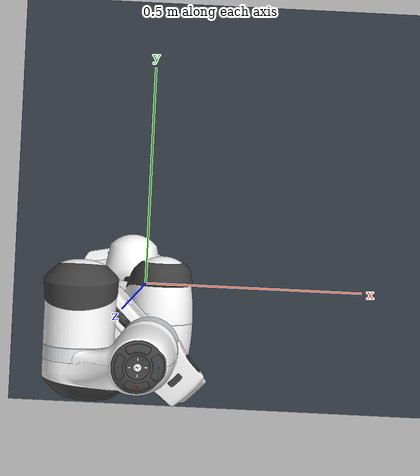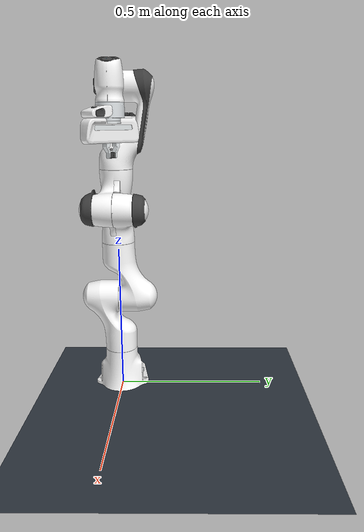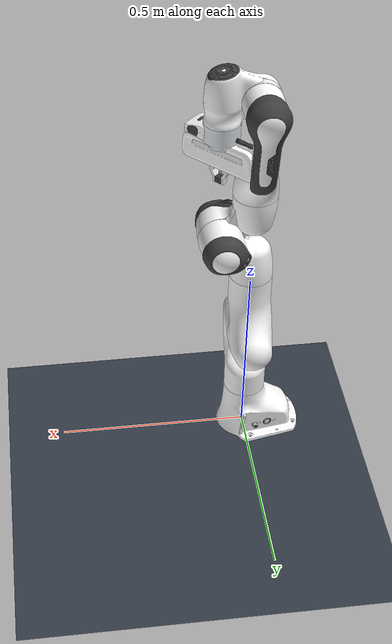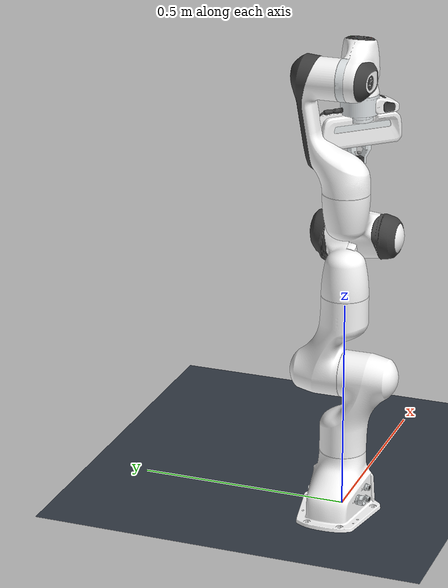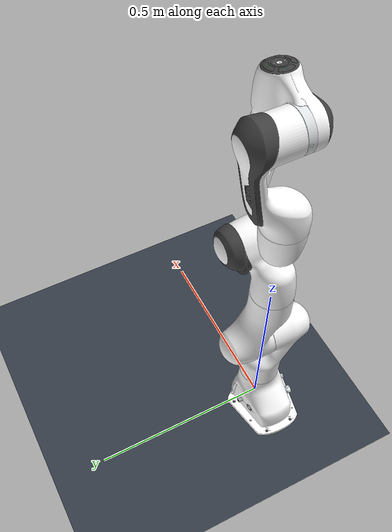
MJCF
<?xml version='1.0' encoding='utf-8'?>
<mujoco model="panda scene">
  <include file="robot.xml" />
  <statistic center="0.3 0 0.4" extent="1.0" />
  <worldbody>
    <light pos="1 -2 3" dir="-0.2 0.5 -1" diffuse="0.8 0.8 0.8" />
    <geom name="floor" type="plane" pos="0 0 -0.005" size="3 3 0.1" rgba="0.2 0.23 0.27 1" />
  </worldbody>
</mujoco>

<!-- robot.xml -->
<mujoco model="panda">
  <compiler angle="radian" />
  <asset>
    <mesh name="collision_hand" file="meshes/collision/collision_hand.stl" />
    <mesh name="visual_visual_hand_0" file="meshes/visual/visual_visual_hand_0.obj" inertia="shell" />
    <mesh name="visual_visual_hand_1" file="meshes/visual/visual_visual_hand_1.obj" inertia="shell" />
    <mesh name="visual_visual_hand_2" file="meshes/visual/visual_visual_hand_2.obj" inertia="shell" />
    <mesh name="visual_visual_hand_3" file="meshes/visual/visual_visual_hand_3.obj" inertia="shell" />
    <mesh name="visual_visual_hand_4" file="meshes/visual/visual_visual_hand_4.obj" inertia="shell" />
    <mesh name="collision_finger" file="meshes/collision/collision_finger.stl" />
    <mesh name="visual_visual_finger_0" file="meshes/visual/visual_visual_finger_0.obj" inertia="shell" />
    <mesh name="visual_visual_finger_1" file="meshes/visual/visual_visual_finger_1.obj" inertia="shell" />
    <mesh name="collision_link0" file="meshes/collision/collision_link0.stl" />
    <mesh name="visual_visual_link0_0" file="meshes/visual/visual_visual_link0_0.obj" inertia="shell" />
    <mesh name="visual_visual_link0_1" file="meshes/visual/visual_visual_link0_1.obj" inertia="shell" />
    <mesh name="visual_visual_link0_2" file="meshes/visual/visual_visual_link0_2.obj" inertia="shell" />
    <mesh name="visual_visual_link0_3" file="meshes/visual/visual_visual_link0_3.obj" inertia="shell" />
    <mesh name="visual_visual_link0_4" file="meshes/visual/visual_visual_link0_4.obj" inertia="shell" />
    <mesh name="visual_visual_link0_5" file="meshes/visual/visual_visual_link0_5.obj" inertia="shell" />
    <mesh name="visual_visual_link0_6" file="meshes/visual/visual_visual_link0_6.obj" inertia="shell" />
    <mesh name="visual_visual_link0_7" file="meshes/visual/visual_visual_link0_7.obj" inertia="shell" />
    <mesh name="visual_visual_link0_8" file="meshes/visual/visual_visual_link0_8.obj" inertia="shell" />
    <mesh name="visual_visual_link0_9" file="meshes/visual/visual_visual_link0_9.obj" inertia="shell" />
    <mesh name="visual_visual_link0_10" file="meshes/visual/visual_visual_link0_10.obj" inertia="shell" />
    <mesh name="visual_visual_link0_11" file="meshes/visual/visual_visual_link0_11.obj" inertia="shell" />
    <mesh name="visual_visual_link0_12" file="meshes/visual/visual_visual_link0_12.obj" inertia="shell" />
    <mesh name="visual_visual_link0_13" file="meshes/visual/visual_visual_link0_13.obj" inertia="shell" />
    <mesh name="visual_visual_link0_14" file="meshes/visual/visual_visual_link0_14.obj" inertia="shell" />
    <mesh name="visual_visual_link0_15" file="meshes/visual/visual_visual_link0_15.obj" inertia="shell" />
    <mesh name="visual_visual_link0_16" file="meshes/visual/visual_visual_link0_16.obj" inertia="shell" />
    <mesh name="visual_visual_link0_17" file="meshes/visual/visual_visual_link0_17.obj" inertia="shell" />
    <mesh name="visual_visual_link0_18" file="meshes/visual/visual_visual_link0_18.obj" inertia="shell" />
    <mesh name="visual_visual_link0_19" file="meshes/visual/visual_visual_link0_19.obj" inertia="shell" />
    <mesh name="visual_visual_link0_20" file="meshes/visual/visual_visual_link0_20.obj" inertia="shell" />
    <mesh name="visual_visual_link0_21" file="meshes/visual/visual_visual_link0_21.obj" inertia="shell" />
    <mesh name="visual_visual_link0_22" file="meshes/visual/visual_visual_link0_22.obj" inertia="shell" />
    <mesh name="collision_link1" file="meshes/collision/collision_link1.stl" />
    <mesh name="visual_visual_link1_0" file="meshes/visual/visual_visual_link1_0.obj" inertia="shell" />
    <mesh name="collision_link2" file="meshes/collision/collision_link2.stl" />
    <mesh name="visual_visual_link2_0" file="meshes/visual/visual_visual_link2_0.obj" inertia="shell" />
    <mesh name="collision_link3" file="meshes/collision/collision_link3.stl" />
    <mesh name="visual_visual_link3_0" file="meshes/visual/visual_visual_link3_0.obj" inertia="shell" />
    <mesh name="visual_visual_link3_1" file="meshes/visual/visual_visual_link3_1.obj" inertia="shell" />
    <mesh name="visual_visual_link3_2" file="meshes/visual/visual_visual_link3_2.obj" inertia="shell" />
    <mesh name="visual_visual_link3_3" file="meshes/visual/visual_visual_link3_3.obj" inertia="shell" />
    <mesh name="collision_link4" file="meshes/collision/collision_link4.stl" />
    <mesh name="visual_visual_link4_0" file="meshes/visual/visual_visual_link4_0.obj" inertia="shell" />
    <mesh name="visual_visual_link4_1" file="meshes/visual/visual_visual_link4_1.obj" inertia="shell" />
    <mesh name="visual_visual_link4_2" file="meshes/visual/visual_visual_link4_2.obj" inertia="shell" />
    <mesh name="visual_visual_link4_3" file="meshes/visual/visual_visual_link4_3.obj" inertia="shell" />
    <mesh name="collision_link5" file="meshes/collision/collision_link5.stl" />
    <mesh name="visual_visual_link5_0" file="meshes/visual/visual_visual_link5_0.obj" inertia="shell" />
    <mesh name="visual_visual_link5_1" file="meshes/visual/visual_visual_link5_1.obj" inertia="shell" />
    <mesh name="visual_visual_link5_2" file="meshes/visual/visual_visual_link5_2.obj" inertia="shell" />
    <mesh name="collision_link6" file="meshes/collision/collision_link6.stl" />
    <mesh name="visual_visual_link6_0" file="meshes/visual/visual_visual_link6_0.obj" inertia="shell" />
    <mesh name="visual_visual_link6_1" file="meshes/visual/visual_visual_link6_1.obj" inertia="shell" />
    <mesh name="visual_visual_link6_2" file="meshes/visual/visual_visual_link6_2.obj" inertia="shell" />
    <mesh name="visual_visual_link6_3" file="meshes/visual/visual_visual_link6_3.obj" inertia="shell" />
    <mesh name="visual_visual_link6_4" file="meshes/visual/visual_visual_link6_4.obj" inertia="shell" />
    <mesh name="visual_visual_link6_5" file="meshes/visual/visual_visual_link6_5.obj" inertia="shell" />
    <mesh name="visual_visual_link6_6" file="meshes/visual/visual_visual_link6_6.obj" inertia="shell" />
    <mesh name="visual_visual_link6_7" file="meshes/visual/visual_visual_link6_7.obj" inertia="shell" />
    <mesh name="visual_visual_link6_8" file="meshes/visual/visual_visual_link6_8.obj" inertia="shell" />
    <mesh name="visual_visual_link6_9" file="meshes/visual/visual_visual_link6_9.obj" inertia="shell" />
    <mesh name="visual_visual_link6_10" file="meshes/visual/visual_visual_link6_10.obj" inertia="shell" />
    <mesh name="visual_visual_link6_11" file="meshes/visual/visual_visual_link6_11.obj" inertia="shell" />
    <mesh name="visual_visual_link6_12" file="meshes/visual/visual_visual_link6_12.obj" inertia="shell" />
    <mesh name="visual_visual_link6_13" file="meshes/visual/visual_visual_link6_13.obj" inertia="shell" />
    <mesh name="visual_visual_link6_14" file="meshes/visual/visual_visual_link6_14.obj" inertia="shell" />
    <mesh name="visual_visual_link6_15" file="meshes/visual/visual_visual_link6_15.obj" inertia="shell" />
    <mesh name="visual_visual_link6_16" file="meshes/visual/visual_visual_link6_16.obj" inertia="shell" />
    <mesh name="collision_link7" file="meshes/collision/collision_link7.stl" />
    <mesh name="visual_visual_link7_0" file="meshes/visual/visual_visual_link7_0.obj" inertia="shell" />
    <mesh name="visual_visual_link7_1" file="meshes/visual/visual_visual_link7_1.obj" inertia="shell" />
    <mesh name="visual_visual_link7_2" file="meshes/visual/visual_visual_link7_2.obj" inertia="shell" />
    <mesh name="visual_visual_link7_3" file="meshes/visual/visual_visual_link7_3.obj" inertia="shell" />
    <mesh name="visual_visual_link7_4" file="meshes/visual/visual_visual_link7_4.obj" inertia="shell" />
    <mesh name="visual_visual_link7_5" file="meshes/visual/visual_visual_link7_5.obj" inertia="shell" />
    <mesh name="visual_visual_link7_6" file="meshes/visual/visual_visual_link7_6.obj" inertia="shell" />
    <mesh name="visual_visual_link7_7" file="meshes/visual/visual_visual_link7_7.obj" inertia="shell" />
    <material name="visual_visual_hand_0_material" rgba="0.2509803922 0.2509803922 0.2509803922 1" />
    <material name="visual_visual_hand_1_material" rgba="0.9019607843 0.9215686275 0.9294117647 1" />
    <material name="visual_visual_hand_2_material" rgba="0.9019607843 0.9215686275 0.9294117647 1" />
    <material name="visual_visual_hand_3_material" rgba="1 1 1 1" />
    <material name="visual_visual_hand_4_material" rgba="0.2509803922 0.2509803922 0.2509803922 1" />
    <material name="visual_visual_finger_0_material" rgba="0.9019607843 0.9215686275 0.9294117647 1" />
    <material name="visual_visual_finger_1_material" rgba="0.2509803922 0.2509803922 0.2509803922 1" />
    <material name="visual_visual_link0_0_material" rgba="0.9019607843 0.9215686275 0.9294117647 1" />
    <material name="visual_visual_link0_1_material" rgba="0.9019607843 0.9215686275 0.9294117647 1" />
    <material name="visual_visual_link0_2_material" rgba="1 1 1 1" />
    <material name="visual_visual_link0_3_material" rgba="1 1 1 1" />
    <material name="visual_visual_link0_4_material" rgba="1 1 1 1" />
    <material name="visual_visual_link0_5_material" rgba="1 1 1 1" />
    <material name="visual_visual_link0_6_material" rgba="1 1 1 1" />
    <material name="visual_visual_link0_7_material" rgba="0.9019607843 0.9215686275 0.9294117647 1" />
    <material name="visual_visual_link0_8_material" rgba="0.9019607843 0.9215686275 0.9294117647 1" />
    <material name="visual_visual_link0_9_material" rgba="0.2509803922 0.2509803922 0.2509803922 1" />
    <material name="visual_visual_link0_10_material" rgba="0.2509803922 0.2509803922 0.2509803922 1" />
    <material name="visual_visual_link0_11_material" rgba="0.2509803922 0.2509803922 0.2509803922 1" />
    <material name="visual_visual_link0_12_material" rgba="0.2509803922 0.2509803922 0.2509803922 1" />
    <material name="visual_visual_link0_13_material" rgba="0.9019607843 0.9215686275 0.9294117647 1" />
    <material name="visual_visual_link0_14_material" rgba="0.9019607843 0.9215686275 0.9294117647 1" />
    <material name="visual_visual_link0_15_material" rgba="0.9019607843 0.9215686275 0.9294117647 1" />
    <material name="visual_visual_link0_16_material" rgba="0.9019607843 0.9215686275 0.9294117647 1" />
    <material name="visual_visual_link0_17_material" rgba="0.2509803922 0.2509803922 0.2509803922 1" />
    <material name="visual_visual_link0_18_material" rgba="0.2509803922 0.2509803922 0.2509803922 1" />
    <material name="visual_visual_link0_19_material" rgba="0.9019607843 0.9215686275 0.9294117647 1" />
    <material name="visual_visual_link0_20_material" rgba="0.9019607843 0.9215686275 0.9294117647 1" />
    <material name="visual_visual_link0_21_material" rgba="0.2509803922 0.2509803922 0.2509803922 1" />
    <material name="visual_visual_link0_22_material" rgba="0.2509803922 0.2509803922 0.2509803922 1" />
    <material name="visual_visual_link1_0_material" rgba="1 1 1 1" />
    <material name="visual_visual_link2_0_material" rgba="1 1 1 1" />
    <material name="visual_visual_link3_0_material" rgba="1 1 1 1" />
    <material name="visual_visual_link3_1_material" rgba="1 1 1 1" />
    <material name="visual_visual_link3_2_material" rgba="1 1 1 1" />
    <material name="visual_visual_link3_3_material" rgba="0.2509803922 0.2509803922 0.2509803922 1" />
    <material name="visual_visual_link4_0_material" rgba="1 1 1 1" />
    <material name="visual_visual_link4_1_material" rgba="0.2509803922 0.2509803922 0.2509803922 1" />
    <material name="visual_visual_link4_2_material" rgba="1 1 1 1" />
    <material name="visual_visual_link4_3_material" rgba="1 1 1 1" />
    <material name="visual_visual_link5_0_material" rgba="1 1 1 1" />
    <material name="visual_visual_link5_1_material" rgba="0.2509803922 0.2509803922 0.2509803922 1" />
    <material name="visual_visual_link5_2_material" rgba="1 1 1 1" />
    <material name="visual_visual_link6_0_material" rgba="1 0 0 1" />
    <material name="visual_visual_link6_1_material" rgba="0 1 0 1" />
    <material name="visual_visual_link6_2_material" rgba="1 1 1 1" />
    <material name="visual_visual_link6_3_material" rgba="0.2509803922 0.2509803922 0.2509803922 1" />
    <material name="visual_visual_link6_4_material" rgba="0.2509803922 0.2509803922 0.2509803922 1" />
    <material name="visual_visual_link6_5_material" rgba="0.2509803922 0.2509803922 0.2509803922 1" />
    <material name="visual_visual_link6_6_material" rgba="1 1 1 1" />
    <material name="visual_visual_link6_7_material" rgba="1 1 1 1" />
    <material name="visual_visual_link6_8_material" rgba="1 1 1 1" />
    <material name="visual_visual_link6_9_material" rgba="1 1 1 1" />
    <material name="visual_visual_link6_10_material" rgba="0.9019607843 0.9215686275 0.9294117647 1" />
    <material name="visual_visual_link6_11_material" rgba="0.2509803922 0.2509803922 0.2509803922 1" />
    <material name="visual_visual_link6_12_material" rgba="1 1 1 1" />
    <material name="visual_visual_link6_13_material" rgba="1 1 1 1" />
    <material name="visual_visual_link6_14_material" rgba="0.2509803922 0.2509803922 0.2509803922 1" />
    <material name="visual_visual_link6_15_material" rgba="0.03921568627 0.5411764706 0.7803921569 1" />
    <material name="visual_visual_link6_16_material" rgba="0.03921568627 0.5411764706 0.7803921569 1" />
    <material name="visual_visual_link7_0_material" rgba="0.2509803922 0.2509803922 0.2509803922 1" />
    <material name="visual_visual_link7_1_material" rgba="0.2509803922 0.2509803922 0.2509803922 1" />
    <material name="visual_visual_link7_2_material" rgba="0.2509803922 0.2509803922 0.2509803922 1" />
    <material name="visual_visual_link7_3_material" rgba="1 1 1 1" />
    <material name="visual_visual_link7_4_material" rgba="0.2509803922 0.2509803922 0.2509803922 1" />
    <material name="visual_visual_link7_5_material" rgba="0.2509803922 0.2509803922 0.2509803922 1" />
    <material name="visual_visual_link7_6_material" rgba="0.2509803922 0.2509803922 0.2509803922 1" />
    <material name="visual_visual_link7_7_material" rgba="0.8980392157 0.9176470588 0.9294117647 1" />
  </asset>
  <worldbody>
    <body name="panda_link0">
      <geom type="mesh" mesh="collision_link0" group="3" />
      <geom name="panda_link0_visual_visual_link0_0" type="mesh" contype="0" conaffinity="0" group="1" density="0" mesh="visual_visual_link0_0" material="visual_visual_link0_0_material" />
      <geom name="panda_link0_visual_visual_link0_1" type="mesh" contype="0" conaffinity="0" group="1" density="0" mesh="visual_visual_link0_1" material="visual_visual_link0_1_material" />
      <geom name="panda_link0_visual_visual_link0_2" type="mesh" contype="0" conaffinity="0" group="1" density="0" mesh="visual_visual_link0_2" material="visual_visual_link0_2_material" />
      <geom name="panda_link0_visual_visual_link0_3" type="mesh" contype="0" conaffinity="0" group="1" density="0" mesh="visual_visual_link0_3" material="visual_visual_link0_3_material" />
      <geom name="panda_link0_visual_visual_link0_4" type="mesh" contype="0" conaffinity="0" group="1" density="0" mesh="visual_visual_link0_4" material="visual_visual_link0_4_material" />
      <geom name="panda_link0_visual_visual_link0_5" type="mesh" contype="0" conaffinity="0" group="1" density="0" mesh="visual_visual_link0_5" material="visual_visual_link0_5_material" />
      <geom name="panda_link0_visual_visual_link0_6" type="mesh" contype="0" conaffinity="0" group="1" density="0" mesh="visual_visual_link0_6" material="visual_visual_link0_6_material" />
      <geom name="panda_link0_visual_visual_link0_7" type="mesh" contype="0" conaffinity="0" group="1" density="0" mesh="visual_visual_link0_7" material="visual_visual_link0_7_material" />
      <geom name="panda_link0_visual_visual_link0_8" type="mesh" contype="0" conaffinity="0" group="1" density="0" mesh="visual_visual_link0_8" material="visual_visual_link0_8_material" />
      <geom name="panda_link0_visual_visual_link0_9" type="mesh" contype="0" conaffinity="0" group="1" density="0" mesh="visual_visual_link0_9" material="visual_visual_link0_9_material" />
      <geom name="panda_link0_visual_visual_link0_10" type="mesh" contype="0" conaffinity="0" group="1" density="0" mesh="visual_visual_link0_10" material="visual_visual_link0_10_material" />
      <geom name="panda_link0_visual_visual_link0_11" type="mesh" contype="0" conaffinity="0" group="1" density="0" mesh="visual_visual_link0_11" material="visual_visual_link0_11_material" />
      <geom name="panda_link0_visual_visual_link0_12" type="mesh" contype="0" conaffinity="0" group="1" density="0" mesh="visual_visual_link0_12" material="visual_visual_link0_12_material" />
      <geom name="panda_link0_visual_visual_link0_13" type="mesh" contype="0" conaffinity="0" group="1" density="0" mesh="visual_visual_link0_13" material="visual_visual_link0_13_material" />
      <geom name="panda_link0_visual_visual_link0_14" type="mesh" contype="0" conaffinity="0" group="1" density="0" mesh="visual_visual_link0_14" material="visual_visual_link0_14_material" />
      <geom name="panda_link0_visual_visual_link0_15" type="mesh" contype="0" conaffinity="0" group="1" density="0" mesh="visual_visual_link0_15" material="visual_visual_link0_15_material" />
      <geom name="panda_link0_visual_visual_link0_16" type="mesh" contype="0" conaffinity="0" group="1" density="0" mesh="visual_visual_link0_16" material="visual_visual_link0_16_material" />
      <geom name="panda_link0_visual_visual_link0_17" type="mesh" contype="0" conaffinity="0" group="1" density="0" mesh="visual_visual_link0_17" material="visual_visual_link0_17_material" />
      <geom name="panda_link0_visual_visual_link0_18" type="mesh" contype="0" conaffinity="0" group="1" density="0" mesh="visual_visual_link0_18" material="visual_visual_link0_18_material" />
      <geom name="panda_link0_visual_visual_link0_19" type="mesh" contype="0" conaffinity="0" group="1" density="0" mesh="visual_visual_link0_19" material="visual_visual_link0_19_material" />
      <geom name="panda_link0_visual_visual_link0_20" type="mesh" contype="0" conaffinity="0" group="1" density="0" mesh="visual_visual_link0_20" material="visual_visual_link0_20_material" />
      <geom name="panda_link0_visual_visual_link0_21" type="mesh" contype="0" conaffinity="0" group="1" density="0" mesh="visual_visual_link0_21" material="visual_visual_link0_21_material" />
      <geom name="panda_link0_visual_visual_link0_22" type="mesh" contype="0" conaffinity="0" group="1" density="0" mesh="visual_visual_link0_22" material="visual_visual_link0_22_material" />
      <body name="panda_link1" pos="0 0 0.333">
        <inertial pos="0.003875 0.002081 -0.175" quat="0.711549 0.00634377 -0.0131124 0.702485" mass="4.97068" diaginertia="0.707137 0.703435 0.00852456" />
        <joint name="panda_joint1" range="-2.8973 2.8973" actuatorfrcrange="-87 87" damping="10" frictionloss="5" />
        <geom type="mesh" mesh="collision_link1" group="3" />
        <geom name="panda_link1_visual_visual_link1_0" type="mesh" contype="0" conaffinity="0" group="1" density="0" mesh="visual_visual_link1_0" material="visual_visual_link1_0_material" />
        <body name="panda_link2" quat="0.707107 -0.707107 0 0">
          <inertial pos="-0.003141 -0.02872 0.003495" quat="-0.168175 0.828366 -0.122878 0.520027" mass="0.646926" diaginertia="0.0310326 0.0283001 0.00273425" />
          <joint name="panda_joint2" range="-1.7628 1.7628" actuatorfrcrange="-87 87" damping="5" frictionloss="2" />
          <geom type="mesh" mesh="collision_link2" group="3" />
          <geom name="panda_link2_visual_visual_link2_0" type="mesh" contype="0" conaffinity="0" group="1" density="0" mesh="visual_visual_link2_0" material="visual_visual_link2_0_material" />
          <body name="panda_link3" pos="0 -0.316 0" quat="0.707107 0.707107 0 0">
            <inertial pos="0.027518 0.039252 -0.066502" quat="0.662769 -0.00678331 0.252053 0.705096" mass="3.2286" diaginertia="0.0415014 0.0414793 0.00124635" />
            <joint name="panda_joint3" range="-2.8973 2.8973" actuatorfrcrange="-87 87" damping="5" frictionloss="2" />
            <geom type="mesh" mesh="collision_link3" group="3" />
            <geom name="panda_link3_visual_visual_link3_0" type="mesh" contype="0" conaffinity="0" group="1" density="0" mesh="visual_visual_link3_0" material="visual_visual_link3_0_material" />
            <geom name="panda_link3_visual_visual_link3_1" type="mesh" contype="0" conaffinity="0" group="1" density="0" mesh="visual_visual_link3_1" material="visual_visual_link3_1_material" />
            <geom name="panda_link3_visual_visual_link3_2" type="mesh" contype="0" conaffinity="0" group="1" density="0" mesh="visual_visual_link3_2" material="visual_visual_link3_2_material" />
            <geom name="panda_link3_visual_visual_link3_3" type="mesh" contype="0" conaffinity="0" group="1" density="0" mesh="visual_visual_link3_3" material="visual_visual_link3_3_material" />
            <body name="panda_link4" pos="0.0825 0 0" quat="0.707107 0.707107 0 0">
              <inertial pos="-0.05317 0.104419 0.027454" quat="0.65058 0.529822 -0.0962034 0.535518" mass="3.5879" diaginertia="0.0349596 0.0281483 0.0106201" />
              <joint name="panda_joint4" range="-3.0718 -0.0698" actuatorfrcrange="-87 87" damping="1" frictionloss="0.5" />
              <geom type="mesh" mesh="collision_link4" group="3" />
              <geom name="panda_link4_visual_visual_link4_0" type="mesh" contype="0" conaffinity="0" group="1" density="0" mesh="visual_visual_link4_0" material="visual_visual_link4_0_material" />
              <geom name="panda_link4_visual_visual_link4_1" type="mesh" contype="0" conaffinity="0" group="1" density="0" mesh="visual_visual_link4_1" material="visual_visual_link4_1_material" />
              <geom name="panda_link4_visual_visual_link4_2" type="mesh" contype="0" conaffinity="0" group="1" density="0" mesh="visual_visual_link4_2" material="visual_visual_link4_2_material" />
              <geom name="panda_link4_visual_visual_link4_3" type="mesh" contype="0" conaffinity="0" group="1" density="0" mesh="visual_visual_link4_3" material="visual_visual_link4_3_material" />
              <body name="panda_link5" pos="-0.0825 0.384 0" quat="0.707107 -0.707107 0 0">
                <inertial pos="-0.011953 0.041065 -0.038437" quat="0.987313 -0.0121954 0.0719187 -0.141037" mass="1.22595" diaginertia="0.0367625 0.0288531 0.00803437" />
                <joint name="panda_joint5" range="-2.8973 2.8973" actuatorfrcrange="-12 12" damping="2" frictionloss="1" />
                <geom type="mesh" mesh="collision_link5" group="3" />
                <geom name="panda_link5_visual_visual_link5_0" type="mesh" contype="0" conaffinity="0" group="1" density="0" mesh="visual_visual_link5_0" material="visual_visual_link5_0_material" />
                <geom name="panda_link5_visual_visual_link5_1" type="mesh" contype="0" conaffinity="0" group="1" density="0" mesh="visual_visual_link5_1" material="visual_visual_link5_1_material" />
                <geom name="panda_link5_visual_visual_link5_2" type="mesh" contype="0" conaffinity="0" group="1" density="0" mesh="visual_visual_link5_2" material="visual_visual_link5_2_material" />
                <body name="panda_link6" quat="0.707107 0.707107 0 0">
                  <inertial pos="0.060149 -0.014117 -0.010517" quat="0.101075 0.59332 0.0287227 0.798079" mass="1.66656" diaginertia="0.00584276 0.00431037 0.00159787" />
                  <joint name="panda_joint6" range="-0.0175 3.7525" actuatorfrcrange="-12 12" damping="1" frictionloss="0.5" />
                  <geom type="mesh" mesh="collision_link6" group="3" />
                  <geom name="panda_link6_visual_visual_link6_0" type="mesh" contype="0" conaffinity="0" group="1" density="0" mesh="visual_visual_link6_0" material="visual_visual_link6_0_material" />
                  <geom name="panda_link6_visual_visual_link6_1" type="mesh" contype="0" conaffinity="0" group="1" density="0" mesh="visual_visual_link6_1" material="visual_visual_link6_1_material" />
                  <geom name="panda_link6_visual_visual_link6_2" type="mesh" contype="0" conaffinity="0" group="1" density="0" mesh="visual_visual_link6_2" material="visual_visual_link6_2_material" />
                  <geom name="panda_link6_visual_visual_link6_3" type="mesh" contype="0" conaffinity="0" group="1" density="0" mesh="visual_visual_link6_3" material="visual_visual_link6_3_material" />
                  <geom name="panda_link6_visual_visual_link6_4" type="mesh" contype="0" conaffinity="0" group="1" density="0" mesh="visual_visual_link6_4" material="visual_visual_link6_4_material" />
                  <geom name="panda_link6_visual_visual_link6_5" type="mesh" contype="0" conaffinity="0" group="1" density="0" mesh="visual_visual_link6_5" material="visual_visual_link6_5_material" />
                  <geom name="panda_link6_visual_visual_link6_6" type="mesh" contype="0" conaffinity="0" group="1" density="0" mesh="visual_visual_link6_6" material="visual_visual_link6_6_material" />
                  <geom name="panda_link6_visual_visual_link6_7" type="mesh" contype="0" conaffinity="0" group="1" density="0" mesh="visual_visual_link6_7" material="visual_visual_link6_7_material" />
                  <geom name="panda_link6_visual_visual_link6_8" type="mesh" contype="0" conaffinity="0" group="1" density="0" mesh="visual_visual_link6_8" material="visual_visual_link6_8_material" />
                  <geom name="panda_link6_visual_visual_link6_9" type="mesh" contype="0" conaffinity="0" group="1" density="0" mesh="visual_visual_link6_9" material="visual_visual_link6_9_material" />
                  <geom name="panda_link6_visual_visual_link6_10" type="mesh" contype="0" conaffinity="0" group="1" density="0" mesh="visual_visual_link6_10" material="visual_visual_link6_10_material" />
                  <geom name="panda_link6_visual_visual_link6_11" type="mesh" contype="0" conaffinity="0" group="1" density="0" mesh="visual_visual_link6_11" material="visual_visual_link6_11_material" />
                  <geom name="panda_link6_visual_visual_link6_12" type="mesh" contype="0" conaffinity="0" group="1" density="0" mesh="visual_visual_link6_12" material="visual_visual_link6_12_material" />
                  <geom name="panda_link6_visual_visual_link6_13" type="mesh" contype="0" conaffinity="0" group="1" density="0" mesh="visual_visual_link6_13" material="visual_visual_link6_13_material" />
                  <geom name="panda_link6_visual_visual_link6_14" type="mesh" contype="0" conaffinity="0" group="1" density="0" mesh="visual_visual_link6_14" material="visual_visual_link6_14_material" />
                  <geom name="panda_link6_visual_visual_link6_15" type="mesh" contype="0" conaffinity="0" group="1" density="0" mesh="visual_visual_link6_15" material="visual_visual_link6_15_material" />
                  <geom name="panda_link6_visual_visual_link6_16" type="mesh" contype="0" conaffinity="0" group="1" density="0" mesh="visual_visual_link6_16" material="visual_visual_link6_16_material" />
                  <body name="panda_link7" pos="0.088 0 0" quat="0.707107 0.707107 0 0">
                    <inertial pos="0.010517 -0.004252 0.061597" quat="0.992939 -0.0762041 0.0733595 -0.0537067" mass="0.735522" diaginertia="0.0127345 0.0101055 0.00451803" />
                    <joint name="panda_joint7" range="-2.8973 2.8973" actuatorfrcrange="-12 12" damping="1" frictionloss="0.5" />
                    <geom type="mesh" mesh="collision_link7" group="3" />
                    <geom name="panda_link7_visual_visual_link7_0" type="mesh" contype="0" conaffinity="0" group="1" density="0" mesh="visual_visual_link7_0" material="visual_visual_link7_0_material" />
                    <geom name="panda_link7_visual_visual_link7_1" type="mesh" contype="0" conaffinity="0" group="1" density="0" mesh="visual_visual_link7_1" material="visual_visual_link7_1_material" />
                    <geom name="panda_link7_visual_visual_link7_2" type="mesh" contype="0" conaffinity="0" group="1" density="0" mesh="visual_visual_link7_2" material="visual_visual_link7_2_material" />
                    <geom name="panda_link7_visual_visual_link7_3" type="mesh" contype="0" conaffinity="0" group="1" density="0" mesh="visual_visual_link7_3" material="visual_visual_link7_3_material" />
                    <geom name="panda_link7_visual_visual_link7_4" type="mesh" contype="0" conaffinity="0" group="1" density="0" mesh="visual_visual_link7_4" material="visual_visual_link7_4_material" />
                    <geom name="panda_link7_visual_visual_link7_5" type="mesh" contype="0" conaffinity="0" group="1" density="0" mesh="visual_visual_link7_5" material="visual_visual_link7_5_material" />
                    <geom name="panda_link7_visual_visual_link7_6" type="mesh" contype="0" conaffinity="0" group="1" density="0" mesh="visual_visual_link7_6" material="visual_visual_link7_6_material" />
                    <geom name="panda_link7_visual_visual_link7_7" type="mesh" contype="0" conaffinity="0" group="1" density="0" mesh="visual_visual_link7_7" material="visual_visual_link7_7_material" />
                    <body name="panda_link8" pos="0 0 0.107">
                      <inertial pos="0 0 0" mass="0" diaginertia="0.001 0.001 0.001" />
                      <body name="panda_hand" quat="0.92388 0 0 -0.382683">
                        <inertial pos="0 0.0015244 0.0275912" quat="0.707107 0.707107 0 0" mass="0.73" diaginertia="0.0027856 0.00256378 0.000400033" />
                        <site name="grasp" pos="0 0 0.085" size="0.004"/>
                        <geom type="mesh" mesh="collision_hand" group="3" />
                        <geom name="panda_hand_visual_visual_hand_0" type="mesh" contype="0" conaffinity="0" group="1" density="0" mesh="visual_visual_hand_0" material="visual_visual_hand_0_material" />
                        <geom name="panda_hand_visual_visual_hand_1" type="mesh" contype="0" conaffinity="0" group="1" density="0" mesh="visual_visual_hand_1" material="visual_visual_hand_1_material" />
                        <geom name="panda_hand_visual_visual_hand_2" type="mesh" contype="0" conaffinity="0" group="1" density="0" mesh="visual_visual_hand_2" material="visual_visual_hand_2_material" />
                        <geom name="panda_hand_visual_visual_hand_3" type="mesh" contype="0" conaffinity="0" group="1" density="0" mesh="visual_visual_hand_3" material="visual_visual_hand_3_material" />
                        <geom name="panda_hand_visual_visual_hand_4" type="mesh" contype="0" conaffinity="0" group="1" density="0" mesh="visual_visual_hand_4" material="visual_visual_hand_4_material" />
                        <body name="panda_leftfinger" pos="0 0 0.0584">
                          <inertial pos="0 0.0145644 0.0227941" mass="0.1" diaginertia="3.01221e-05 2.95874e-05 6.95125e-06" />
                          <joint name="panda_finger_joint1" type="slide" range="0 0.04" actuatorfrcrange="-20 20" damping="500" axis="0 1 0" />
                          <geom type="mesh" mesh="collision_finger" group="3" />
                          <geom name="panda_leftfinger_visual_visual_finger_0" type="mesh" contype="0" conaffinity="0" group="1" density="0" mesh="visual_visual_finger_0" material="visual_visual_finger_0_material" />
                          <geom name="panda_leftfinger_visual_visual_finger_1" type="mesh" contype="0" conaffinity="0" group="1" density="0" mesh="visual_visual_finger_1" material="visual_visual_finger_1_material" />
                        </body>
                        <body name="panda_rightfinger" pos="0 0 0.0584">
                          <inertial pos="0 -0.0145644 0.0227941" mass="0.1" diaginertia="3.01221e-05 2.95874e-05 6.95125e-06" />
                          <joint name="panda_finger_joint2" type="slide" range="0 0.04" actuatorfrcrange="-20 20" damping="500" axis="0 -1 0" />
                          <geom quat="0 0 0 1" type="mesh" mesh="collision_finger" group="3" />
                          <geom name="panda_rightfinger_visual_visual_finger_0" quat="0 0 0 1" type="mesh" contype="0" conaffinity="0" group="1" density="0" mesh="visual_visual_finger_0" material="visual_visual_finger_0_material" />
                          <geom name="panda_rightfinger_visual_visual_finger_1" pos="0 0 0" quat="0 0 0 1" type="mesh" contype="0" conaffinity="0" group="1" density="0" mesh="visual_visual_finger_1" material="visual_visual_finger_1_material" />
                        </body>
                      </body>
                    </body>
                  </body>
                </body>
              </body>
            </body>
          </body>
        </body>
      </body>
    </body>
  </worldbody>
  <equality>
    <joint joint1="panda_finger_joint2" joint2="panda_finger_joint1" />
  </equality>
  <option integrator="implicitfast" timestep="0.002" />
  <contact>
    <exclude body1="panda_link8" body2="panda_hand" />
    <exclude body1="panda_hand" body2="panda_leftfinger" />
    <exclude body1="panda_hand" body2="panda_rightfinger" />
    <exclude body1="panda_link0" body2="panda_link1" />
    <exclude body1="panda_link1" body2="panda_link2" />
    <exclude body1="panda_link2" body2="panda_link3" />
    <exclude body1="panda_link3" body2="panda_link4" />
    <exclude body1="panda_link4" body2="panda_link5" />
    <exclude body1="panda_link5" body2="panda_link6" />
    <exclude body1="panda_link6" body2="panda_link7" />
    <exclude body1="panda_link7" body2="panda_link8" />
  </contact>
  <actuator>
    <position name="panda_joint1" joint="panda_joint1" kp="300" kv="30" ctrlrange="-2.8973 2.8973" forcerange="-87 87" />
    <position name="panda_joint2" joint="panda_joint2" kp="300" kv="30" ctrlrange="-1.7628 1.7628" forcerange="-87 87" />
    <position name="panda_joint3" joint="panda_joint3" kp="300" kv="30" ctrlrange="-2.8973 2.8973" forcerange="-87 87" />
    <position name="panda_joint4" joint="panda_joint4" kp="300" kv="30" ctrlrange="-3.0718 -0.0698" forcerange="-87 87" />
    <position name="panda_joint5" joint="panda_joint5" kp="300" kv="30" ctrlrange="-2.8973 2.8973" forcerange="-12 12" />
    <position name="panda_joint6" joint="panda_joint6" kp="300" kv="30" ctrlrange="-0.0175 3.7525" forcerange="-12 12" />
    <position name="panda_joint7" joint="panda_joint7" kp="300" kv="30" ctrlrange="-2.8973 2.8973" forcerange="-12 12" />
    <position name="panda_finger_joint1" joint="panda_finger_joint1" kp="400" kv="20" ctrlrange="0.0 0.04" forcerange="-20 20" />
  </actuator>
  <keyframe>
    <key name="home" qpos="0 -0.7853981634 0 -2.35619449 0 1.570796327 0.7853981634 0.04 0.04" ctrl="0 -0.7853981634 0 -2.35619449 0 1.570796327 0.7853981634 0.04" />
  </keyframe>
</mujoco>
